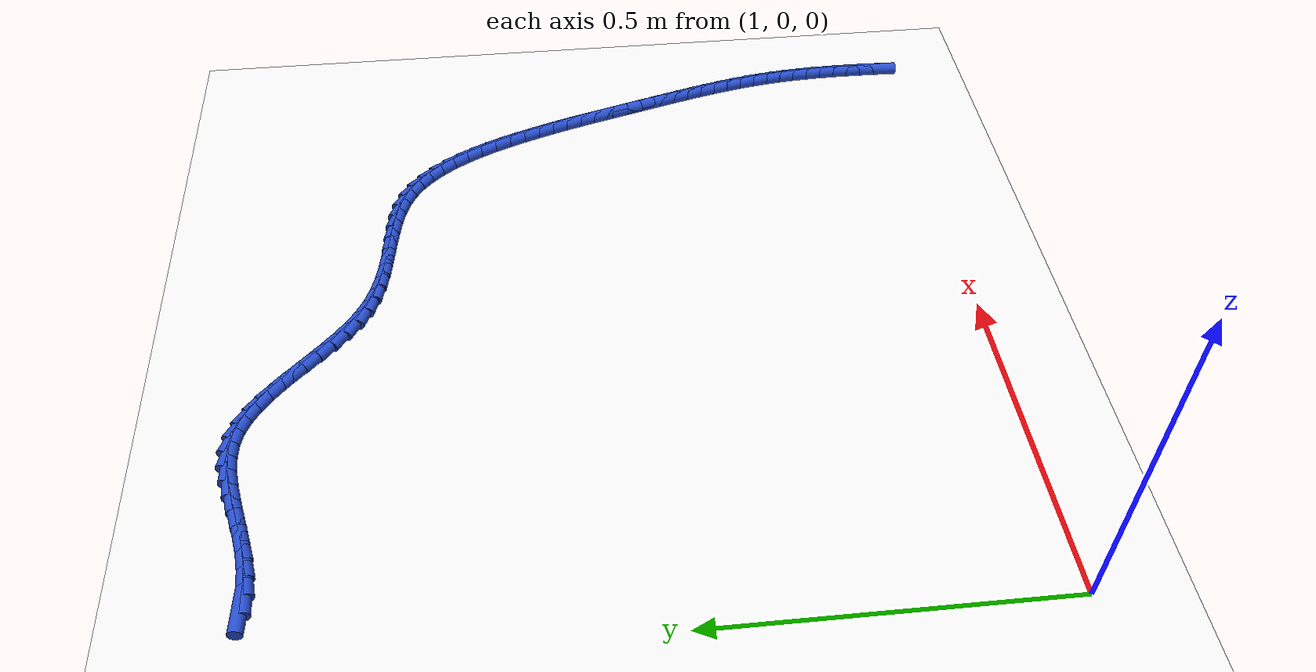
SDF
<sdf version="1.6">
 <world name="default">
  <model name="ground_plane">
   <static>1</static>
   <link name="link">
    <collision name="collision">
     <geometry><plane><normal>0 0 1</normal><size>100 100</size></plane></geometry>
     <surface><friction><ode><mu>100</mu><mu2>50</mu2></ode></friction></surface>
    </collision>
    <visual name="visual">
     <cast_shadows>0</cast_shadows>
     <geometry><plane><normal>0 0 1</normal><size>100 100</size></plane></geometry>
     <material>
      <script><uri>file://media/materials/scripts/gazebo.material</uri><name>Gazebo/WhiteGlow</name></script>
     </material>
    </visual>
   </link>
  </model>
  <model name="line">
   <link name="link_69">
    <pose>1.0824556290506837 1.0446108615287684 0.01 0 1.57 -0.06217525175705942</pose>
    <collision name="collision">
     <geometry><cylinder><radius>0.01</radius><length>0.08</length></cylinder></geometry>
    </collision>
    <visual name="visual">
     <material>
      <script><name>Gazebo/Blue</name><uri>file://media/materials/scripts/gazebo.material</uri></script>
     </material>
     <geometry><cylinder><radius>0.01</radius><length>0.08</length></cylinder></geometry>
    </visual>
   </link>
   <link name="link_70">
    <pose>1.1070647133720144 1.0430788108255156 0.01 0 1.57 0.07206247755293042</pose>
    <collision name="collision">
     <geometry><cylinder><radius>0.01</radius><length>0.08</length></cylinder></geometry>
    </collision>
    <visual name="visual">
     <material>
      <script><name>Gazebo/Blue</name><uri>file://media/materials/scripts/gazebo.material</uri></script>
     </material>
     <geometry><cylinder><radius>0.01</radius><length>0.08</length></cylinder></geometry>
    </visual>
   </link>
   <link name="link_71">
    <pose>1.132243780965003 1.0448964241976773 0.01 0 1.57 0.16911539855303695</pose>
    <collision name="collision">
     <geometry><cylinder><radius>0.01</radius><length>0.08</length></cylinder></geometry>
    </collision>
    <visual name="visual">
     <material>
      <script><name>Gazebo/Blue</name><uri>file://media/materials/scripts/gazebo.material</uri></script>
     </material>
     <geometry><cylinder><radius>0.01</radius><length>0.08</length></cylinder></geometry>
    </visual>
   </link>
   <link name="link_72">
    <pose>1.1578145862930438 1.049262544417084 0.01 0 1.57 0.23211513267761835</pose>
    <collision name="collision">
     <geometry><cylinder><radius>0.01</radius><length>0.08</length></cylinder></geometry>
    </collision>
    <visual name="visual">
     <material>
      <script><name>Gazebo/Blue</name><uri>file://media/materials/scripts/gazebo.material</uri></script>
     </material>
     <geometry><cylinder><radius>0.01</radius><length>0.08</length></cylinder></geometry>
    </visual>
   </link>
   <link name="link_73">
    <pose>1.1835944153786335 1.0553562660055102 0.01 0 1.57 0.26489466493017977</pose>
    <collision name="collision">
     <geometry><cylinder><radius>0.01</radius><length>0.08</length></cylinder></geometry>
    </collision>
    <visual name="visual">
     <material>
      <script><name>Gazebo/Blue</name><uri>file://media/materials/scripts/gazebo.material</uri></script>
     </material>
     <geometry><cylinder><radius>0.01</radius><length>0.08</length></cylinder></geometry>
    </visual>
   </link>
   <link name="link_74">
    <pose>1.2094005542442687 1.0623566834847316 0.01 0 1.57 0.26954493118171796</pose>
    <collision name="collision">
     <geometry><cylinder><radius>0.01</radius><length>0.08</length></cylinder></geometry>
    </collision>
    <visual name="visual">
     <material>
      <script><name>Gazebo/Blue</name><uri>file://media/materials/scripts/gazebo.material</uri></script>
     </material>
     <geometry><cylinder><radius>0.01</radius><length>0.08</length></cylinder></geometry>
    </visual>
   </link>
   <link name="link_75">
    <pose>1.235050288912445 1.0694428913765217 0.01 0 1.57 0.24585004231201069</pose>
    <collision name="collision">
     <geometry><cylinder><radius>0.01</radius><length>0.08</length></cylinder></geometry>
    </collision>
    <visual name="visual">
     <material>
      <script><name>Gazebo/Blue</name><uri>file://media/materials/scripts/gazebo.material</uri></script>
     </material>
     <geometry><cylinder><radius>0.01</radius><length>0.08</length></cylinder></geometry>
    </visual>
   </link>
   <link name="link_76">
    <pose>1.2603609054056597 1.075793984202656 0.01 0 1.57 0.19107725581424376</pose>
    <collision name="collision">
     <geometry><cylinder><radius>0.01</radius><length>0.08</length></cylinder></geometry>
    </collision>
    <visual name="visual">
     <material>
      <script><name>Gazebo/Blue</name><uri>file://media/materials/scripts/gazebo.material</uri></script>
     </material>
     <geometry><cylinder><radius>0.01</radius><length>0.08</length></cylinder></geometry>
    </visual>
   </link>
   <link name="link_77">
    <pose>1.2851496897464085 1.080589056484909 0.01 0 1.57 0.10006832434159599</pose>
    <collision name="collision">
     <geometry><cylinder><radius>0.01</radius><length>0.08</length></cylinder></geometry>
    </collision>
    <visual name="visual">
     <material>
      <script><name>Gazebo/Blue</name><uri>file://media/materials/scripts/gazebo.material</uri></script>
     </material>
     <geometry><cylinder><radius>0.01</radius><length>0.08</length></cylinder></geometry>
    </visual>
   </link>
   <link name="link_78">
    <pose>1.3092339279571883 1.0830072027450557 0.01 0 1.57 -0.03359885169254067</pose>
    <collision name="collision">
     <geometry><cylinder><radius>0.01</radius><length>0.08</length></cylinder></geometry>
    </collision>
    <visual name="visual">
     <material>
      <script><name>Gazebo/Blue</name><uri>file://media/materials/scripts/gazebo.material</uri></script>
     </material>
     <geometry><cylinder><radius>0.01</radius><length>0.08</length></cylinder></geometry>
    </visual>
   </link>
   <link name="link_79">
    <pose>1.332430906060495 1.0822275175048701 0.01 0 1.57 -0.21089504664935457</pose>
    <collision name="collision">
     <geometry><cylinder><radius>0.01</radius><length>0.08</length></cylinder></geometry>
    </collision>
    <visual name="visual">
     <material>
      <script><name>Gazebo/Blue</name><uri>file://media/materials/scripts/gazebo.material</uri></script>
     </material>
     <geometry><cylinder><radius>0.01</radius><length>0.08</length></cylinder></geometry>
    </visual>
   </link>
   <link name="link_80">
    <pose>1.3545734763592754 1.0774872729996194 0.01 0 1.57 -0.3887146374989438</pose>
    <collision name="collision">
     <geometry><cylinder><radius>0.01</radius><length>0.08</length></cylinder></geometry>
    </collision>
    <visual name="visual">
     <material>
      <script><name>Gazebo/Blue</name><uri>file://media/materials/scripts/gazebo.material</uri></script>
     </material>
     <geometry><cylinder><radius>0.01</radius><length>0.08</length></cylinder></geometry>
    </visual>
   </link>
   <link name="link_81">
    <pose>1.3757103748687252 1.0688305893688408 0.01 0 1.57 -0.5308279019924482</pose>
    <collision name="collision">
     <geometry><cylinder><radius>0.01</radius><length>0.08</length></cylinder></geometry>
    </collision>
    <visual name="visual">
     <material>
      <script><name>Gazebo/Blue</name><uri>file://media/materials/scripts/gazebo.material</uri></script>
     </material>
     <geometry><cylinder><radius>0.01</radius><length>0.08</length></cylinder></geometry>
    </visual>
   </link>
   <link name="link_82">
    <pose>1.3960482226305932 1.056891669262073 0.01 0 1.57 -0.6357335535560384</pose>
    <collision name="collision">
     <geometry><cylinder><radius>0.01</radius><length>0.08</length></cylinder></geometry>
    </collision>
    <visual name="visual">
     <material>
      <script><name>Gazebo/Blue</name><uri>file://media/materials/scripts/gazebo.material</uri></script>
     </material>
     <geometry><cylinder><radius>0.01</radius><length>0.08</length></cylinder></geometry>
    </visual>
   </link>
   <link name="link_83">
    <pose>1.4157972501078864 1.0423182052487114 0.01 0 1.57 -0.7073476512284459</pose>
    <collision name="collision">
     <geometry><cylinder><radius>0.01</radius><length>0.08</length></cylinder></geometry>
    </collision>
    <visual name="visual">
     <material>
      <script><name>Gazebo/Blue</name><uri>file://media/materials/scripts/gazebo.material</uri></script>
     </material>
     <geometry><cylinder><radius>0.01</radius><length>0.08</length></cylinder></geometry>
    </visual>
   </link>
   <link name="link_84">
    <pose>1.4351676877636117 1.0257578898981528 0.01 0 1.57 -0.7503034228822908</pose>
    <collision name="collision">
     <geometry><cylinder><radius>0.01</radius><length>0.08</length></cylinder></geometry>
    </collision>
    <visual name="visual">
     <material>
      <script><name>Gazebo/Blue</name><uri>file://media/materials/scripts/gazebo.material</uri></script>
     </material>
     <geometry><cylinder><radius>0.01</radius><length>0.08</length></cylinder></geometry>
    </visual>
   </link>
   <link name="link_85">
    <pose>1.4543697660607753 1.0078584157797932 0.01 0 1.57 -0.7681404348821284</pose>
    <collision name="collision">
     <geometry><cylinder><radius>0.01</radius><length>0.08</length></cylinder></geometry>
    </collision>
    <visual name="visual">
     <material>
      <script><name>Gazebo/Blue</name><uri>file://media/materials/scripts/gazebo.material</uri></script>
     </material>
     <geometry><cylinder><radius>0.01</radius><length>0.08</length></cylinder></geometry>
    </visual>
   </link>
   <link name="link_86">
    <pose>1.4736137154623836 0.9892674754630285 0.01 0 1.57 -0.7628129735417939</pose>
    <collision name="collision">
     <geometry><cylinder><radius>0.01</radius><length>0.08</length></cylinder></geometry>
    </collision>
    <visual name="visual">
     <material>
      <script><name>Gazebo/Blue</name><uri>file://media/materials/scripts/gazebo.material</uri></script>
     </material>
     <geometry><cylinder><radius>0.01</radius><length>0.08</length></cylinder></geometry>
    </visual>
   </link>
   <link name="link_87">
    <pose>1.4931097664314443 0.9706327615172552 0.01 0 1.57 -0.7347011914095828</pose>
    <collision name="collision">
     <geometry><cylinder><radius>0.01</radius><length>0.08</length></cylinder></geometry>
    </collision>
    <visual name="visual">
     <material>
      <script><name>Gazebo/Blue</name><uri>file://media/materials/scripts/gazebo.material</uri></script>
     </material>
     <geometry><cylinder><radius>0.01</radius><length>0.08</length></cylinder></geometry>
    </visual>
   </link>
   <link name="link_88">
    <pose>1.5130681494309637 0.9526019665118693 0.01 0 1.57 -0.682799285022446</pose>
    <collision name="collision">
     <geometry><cylinder><radius>0.01</radius><length>0.08</length></cylinder></geometry>
    </collision>
    <visual name="visual">
     <material>
      <script><name>Gazebo/Blue</name><uri>file://media/materials/scripts/gazebo.material</uri></script>
     </material>
     <geometry><cylinder><radius>0.01</radius><length>0.08</length></cylinder></geometry>
    </visual>
   </link>
   <link name="link_89">
    <pose>1.5336990949239482 0.9358227830162664 0.01 0 1.57 -0.6050968523568712</pose>
    <collision name="collision">
     <geometry><cylinder><radius>0.01</radius><length>0.08</length></cylinder></geometry>
    </collision>
    <visual name="visual">
     <material>
      <script><name>Gazebo/Blue</name><uri>file://media/materials/scripts/gazebo.material</uri></script>
     </material>
     <geometry><cylinder><radius>0.01</radius><length>0.08</length></cylinder></geometry>
    </visual>
   </link>
   <link name="link_90">
    <pose>1.555212833373404 0.9209429035998431 0.01 0 1.57 -0.49941392535456425</pose>
    <collision name="collision">
     <geometry><cylinder><radius>0.01</radius><length>0.08</length></cylinder></geometry>
    </collision>
    <visual name="visual">
     <material>
      <script><name>Gazebo/Blue</name><uri>file://media/materials/scripts/gazebo.material</uri></script>
     </material>
     <geometry><cylinder><radius>0.01</radius><length>0.08</length></cylinder></geometry>
    </visual>
   </link>
   <link name="link_91">
    <pose>1.577819578913936 0.9086099801480341 0.01 0 1.57 -0.37572291962517274</pose>
    <collision name="collision">
     <geometry><cylinder><radius>0.01</radius><length>0.08</length></cylinder></geometry>
    </collision>
    <visual name="visual">
     <material>
      <script><name>Gazebo/Blue</name><uri>file://media/materials/scripts/gazebo.material</uri></script>
     </material>
     <geometry><cylinder><radius>0.01</radius><length>0.08</length></cylinder></geometry>
    </visual>
   </link>
   <link name="link_92">
    <pose>1.6016279363233794 0.8992184939654168 0.01 0 1.57 -0.2719225271617567</pose>
    <collision name="collision">
     <geometry><cylinder><radius>0.01</radius><length>0.08</length></cylinder></geometry>
    </collision>
    <visual name="visual">
     <material>
      <script><name>Gazebo/Blue</name><uri>file://media/materials/scripts/gazebo.material</uri></script>
     </material>
     <geometry><cylinder><radius>0.01</radius><length>0.08</length></cylinder></geometry>
    </visual>
   </link>
   <link name="link_93">
    <pose>1.6264042466085498 0.8923101395614251 0.01 0 1.57 -0.19645701519809297</pose>
    <collision name="collision">
     <geometry><cylinder><radius>0.01</radius><length>0.08</length></cylinder></geometry>
    </collision>
    <visual name="visual">
     <material>
      <script><name>Gazebo/Blue</name><uri>file://media/materials/scripts/gazebo.material</uri></script>
     </material>
     <geometry><cylinder><radius>0.01</radius><length>0.08</length></cylinder></geometry>
    </visual>
   </link>
   <link name="link_94">
    <pose>1.6518428614085514 0.8872472422356251 0.01 0 1.57 -0.14835245076023845</pose>
    <collision name="collision">
     <geometry><cylinder><radius>0.01</radius><length>0.08</length></cylinder></geometry>
    </collision>
    <visual name="visual">
     <material>
      <script><name>Gazebo/Blue</name><uri>file://media/materials/scripts/gazebo.material</uri></script>
     </material>
     <geometry><cylinder><radius>0.01</radius><length>0.08</length></cylinder></geometry>
    </visual>
   </link>
   <link name="link_95">
    <pose>1.6776381323624896 0.8833921272875838 0.01 0 1.57 -0.12642006470550726</pose>
    <collision name="collision">
     <geometry><cylinder><radius>0.01</radius><length>0.08</length></cylinder></geometry>
    </collision>
    <visual name="visual">
     <material>
      <script><name>Gazebo/Blue</name><uri>file://media/materials/scripts/gazebo.material</uri></script>
     </material>
     <geometry><cylinder><radius>0.01</radius><length>0.08</length></cylinder></geometry>
    </visual>
   </link>
   <link name="link_96">
    <pose>1.70348441110947 0.880107120016868 0.01 0 1.57 -0.13026093619695495</pose>
    <collision name="collision">
     <geometry><cylinder><radius>0.01</radius><length>0.08</length></cylinder></geometry>
    </collision>
    <visual name="visual">
     <material>
      <script><name>Gazebo/Blue</name><uri>file://media/materials/scripts/gazebo.material</uri></script>
     </material>
     <geometry><cylinder><radius>0.01</radius><length>0.08</length></cylinder></geometry>
    </visual>
   </link>
   <link name="link_97">
    <pose>1.729076049288597 0.876754545723044 0.01 0 1.57 -0.16071129137922818</pose>
    <collision name="collision">
     <geometry><cylinder><radius>0.01</radius><length>0.08</length></cylinder></geometry>
    </collision>
    <visual name="visual">
     <material>
      <script><name>Gazebo/Blue</name><uri>file://media/materials/scripts/gazebo.material</uri></script>
     </material>
     <geometry><cylinder><radius>0.01</radius><length>0.08</length></cylinder></geometry>
    </visual>
   </link>
   <link name="link_98">
    <pose>1.7541073985389757 0.8726967297056784 0.01 0 1.57 -0.219876916910991</pose>
    <collision name="collision">
     <geometry><cylinder><radius>0.01</radius><length>0.08</length></cylinder></geometry>
    </collision>
    <visual name="visual">
     <material>
      <script><name>Gazebo/Blue</name><uri>file://media/materials/scripts/gazebo.material</uri></script>
     </material>
     <geometry><cylinder><radius>0.01</radius><length>0.08</length></cylinder></geometry>
    </visual>
   </link>
   <link name="link_99">
    <pose>1.7782728104997114 0.867295997264338 0.01 0 1.57 -0.3106218307191822</pose>
    <collision name="collision">
     <geometry><cylinder><radius>0.01</radius><length>0.08</length></cylinder></geometry>
    </collision>
    <visual name="visual">
     <material>
      <script><name>Gazebo/Blue</name><uri>file://media/materials/scripts/gazebo.material</uri></script>
     </material>
     <geometry><cylinder><radius>0.01</radius><length>0.08</length></cylinder></geometry>
    </visual>
   </link>
   <link name="link_100">
    <pose>1.8012666368099095 0.8599146736985896 0.01 0 1.57 -0.43503972890682063</pose>
    <collision name="collision">
     <geometry><cylinder><radius>0.01</radius><length>0.08</length></cylinder></geometry>
    </collision>
    <visual name="visual">
     <material>
      <script><name>Gazebo/Blue</name><uri>file://media/materials/scripts/gazebo.material</uri></script>
     </material>
     <geometry><cylinder><radius>0.01</radius><length>0.08</length></cylinder></geometry>
    </visual>
   </link>
   <link name="link_101">
    <pose>1.8227832556894117 0.8499151487278813 0.01 0 1.57 -0.5821779343871365</pose>
    <collision name="collision">
     <geometry><cylinder><radius>0.01</radius><length>0.08</length></cylinder></geometry>
    </collision>
    <visual name="visual">
     <material>
      <script><name>Gazebo/Blue</name><uri>file://media/materials/scripts/gazebo.material</uri></script>
     </material>
     <geometry><cylinder><radius>0.01</radius><length>0.08</length></cylinder></geometry>
    </visual>
   </link>
   <link name="link_102">
    <pose>1.8426029891252291 0.8368681015282652 0.01 0 1.57 -0.7171227229795174</pose>
    <collision name="collision">
     <geometry><cylinder><radius>0.01</radius><length>0.08</length></cylinder></geometry>
    </collision>
    <visual name="visual">
     <material>
      <script><name>Gazebo/Blue</name><uri>file://media/materials/scripts/gazebo.material</uri></script>
     </material>
     <geometry><cylinder><radius>0.01</radius><length>0.08</length></cylinder></geometry>
    </visual>
   </link>
   <link name="link_103">
    <pose>1.860783049123543 0.8210152694983005 0.01 0 1.57 -0.831986215718584</pose>
    <collision name="collision">
     <geometry><cylinder><radius>0.01</radius><length>0.08</length></cylinder></geometry>
    </collision>
    <visual name="visual">
     <material>
      <script><name>Gazebo/Blue</name><uri>file://media/materials/scripts/gazebo.material</uri></script>
     </material>
     <geometry><cylinder><radius>0.01</radius><length>0.08</length></cylinder></geometry>
    </visual>
   </link>
   <link name="link_104">
    <pose>1.8774363024340797 0.8027332723749919 0.01 0 1.57 -0.9276602059343603</pose>
    <collision name="collision">
     <geometry><cylinder><radius>0.01</radius><length>0.08</length></cylinder></geometry>
    </collision>
    <visual name="visual">
     <material>
      <script><name>Gazebo/Blue</name><uri>file://media/materials/scripts/gazebo.material</uri></script>
     </material>
     <geometry><cylinder><radius>0.01</radius><length>0.08</length></cylinder></geometry>
    </visual>
   </link>
   <link name="link_105">
    <pose>1.892675615806565 0.7823987298953434 0.01 0 1.57 -1.0062828039376301</pose>
    <collision name="collision">
     <geometry><cylinder><radius>0.01</radius><length>0.08</length></cylinder></geometry>
    </collision>
    <visual name="visual">
     <material>
      <script><name>Gazebo/Blue</name><uri>file://media/materials/scripts/gazebo.material</uri></script>
     </material>
     <geometry><cylinder><radius>0.01</radius><length>0.08</length></cylinder></geometry>
    </visual>
   </link>
   <link name="link_106">
    <pose>1.9066138559907257 0.7603882617963594 0.01 0 1.57 -1.0702729212670767</pose>
    <collision name="collision">
     <geometry><cylinder><radius>0.01</radius><length>0.08</length></cylinder></geometry>
    </collision>
    <visual name="visual">
     <material>
      <script><name>Gazebo/Blue</name><uri>file://media/materials/scripts/gazebo.material</uri></script>
     </material>
     <geometry><cylinder><radius>0.01</radius><length>0.08</length></cylinder></geometry>
    </visual>
   </link>
   <link name="link_107">
    <pose>1.9193638897362884 0.7370784878150441 0.01 0 1.57 -1.1218313619200135</pose>
    <collision name="collision">
     <geometry><cylinder><radius>0.01</radius><length>0.08</length></cylinder></geometry>
    </collision>
    <visual name="visual">
     <material>
      <script><name>Gazebo/Blue</name><uri>file://media/materials/scripts/gazebo.material</uri></script>
     </material>
     <geometry><cylinder><radius>0.01</radius><length>0.08</length></cylinder></geometry>
    </visual>
   </link>
   <link name="link_108">
    <pose>1.9310385837929787 0.7128460276884017 0.01 0 1.57 -1.1627430171146815</pose>
    <collision name="collision">
     <geometry><cylinder><radius>0.01</radius><length>0.08</length></cylinder></geometry>
    </collision>
    <visual name="visual">
     <material>
      <script><name>Gazebo/Blue</name><uri>file://media/materials/scripts/gazebo.material</uri></script>
     </material>
     <geometry><cylinder><radius>0.01</radius><length>0.08</length></cylinder></geometry>
    </visual>
   </link>
   <link name="link_109">
    <pose>1.9417508049105237 0.6880675011534366 0.01 0 1.57 -1.1943246170573223</pose>
    <collision name="collision">
     <geometry><cylinder><radius>0.01</radius><length>0.08</length></cylinder></geometry>
    </collision>
    <visual name="visual">
     <material>
      <script><name>Gazebo/Blue</name><uri>file://media/materials/scripts/gazebo.material</uri></script>
     </material>
     <geometry><cylinder><radius>0.01</radius><length>0.08</length></cylinder></geometry>
    </visual>
   </link>
   <link name="link_110">
    <pose>1.9516134198386483 0.6631195279471526 0.01 0 1.57 -1.217622128436554</pose>
    <collision name="collision">
     <geometry><cylinder><radius>0.01</radius><length>0.08</length></cylinder></geometry>
    </collision>
    <visual name="visual">
     <material>
      <script><name>Gazebo/Blue</name><uri>file://media/materials/scripts/gazebo.material</uri></script>
     </material>
     <geometry><cylinder><radius>0.01</radius><length>0.08</length></cylinder></geometry>
    </visual>
   </link>
   <link name="link_111">
    <pose>1.9607389740214167 0.6383641947567661 0.01 0 1.57 -1.2361837849266037</pose>
    <collision name="collision">
     <geometry><cylinder><radius>0.01</radius><length>0.08</length></cylinder></geometry>
    </collision>
    <visual name="visual">
     <material>
      <script><name>Gazebo/Blue</name><uri>file://media/materials/scripts/gazebo.material</uri></script>
     </material>
     <geometry><cylinder><radius>0.01</radius><length>0.08</length></cylinder></geometry>
    </visual>
   </link>
   <link name="link_112">
    <pose>1.969234822966772 0.613928841084136 0.01 0 1.57 -1.2524011329847147</pose>
    <collision name="collision">
     <geometry><cylinder><radius>0.01</radius><length>0.08</length></cylinder></geometry>
    </collision>
    <visual name="visual">
     <material>
      <script><name>Gazebo/Blue</name><uri>file://media/materials/scripts/gazebo.material</uri></script>
     </material>
     <geometry><cylinder><radius>0.01</radius><length>0.08</length></cylinder></geometry>
    </visual>
   </link>
   <link name="link_113">
    <pose>1.977204121962782 0.5897508253272581 0.01 0 1.57 -1.266040569412216</pose>
    <collision name="collision">
     <geometry><cylinder><radius>0.01</radius><length>0.08</length></cylinder></geometry>
    </collision>
    <visual name="visual">
     <material>
      <script><name>Gazebo/Blue</name><uri>file://media/materials/scripts/gazebo.material</uri></script>
     </material>
     <geometry><cylinder><radius>0.01</radius><length>0.08</length></cylinder></geometry>
    </visual>
   </link>
   <link name="link_114">
    <pose>1.9847499057171352 0.565762051885375 0.01 0 1.57 -1.2768423353390834</pose>
    <collision name="collision">
     <geometry><cylinder><radius>0.01</radius><length>0.08</length></cylinder></geometry>
    </collision>
    <visual name="visual">
     <material>
      <script><name>Gazebo/Blue</name><uri>file://media/materials/scripts/gazebo.material</uri></script>
     </material>
     <geometry><cylinder><radius>0.01</radius><length>0.08</length></cylinder></geometry>
    </visual>
   </link>
   <link name="link_115">
    <pose>1.9919752089375184 0.5418944251577302 0.01 0 1.57 -1.2846069005075933</pose>
    <collision name="collision">
     <geometry><cylinder><radius>0.01</radius><length>0.08</length></cylinder></geometry>
    </collision>
    <visual name="visual">
     <material>
      <script><name>Gazebo/Blue</name><uri>file://media/materials/scripts/gazebo.material</uri></script>
     </material>
     <geometry><cylinder><radius>0.01</radius><length>0.08</length></cylinder></geometry>
    </visual>
   </link>
   <link name="link_116">
    <pose>1.9989830663316202 0.5180798495435672 0.01 0 1.57 -1.2892026447010052</pose>
    <collision name="collision">
     <geometry><cylinder><radius>0.01</radius><length>0.08</length></cylinder></geometry>
    </collision>
    <visual name="visual">
     <material>
      <script><name>Gazebo/Blue</name><uri>file://media/materials/scripts/gazebo.material</uri></script>
     </material>
     <geometry><cylinder><radius>0.01</radius><length>0.08</length></cylinder></geometry>
    </visual>
   </link>
   <link name="link_117">
    <pose>2.0058765126071276 0.4942502294421295 0.01 0 1.57 -1.2905702997282829</pose>
    <collision name="collision">
     <geometry><cylinder><radius>0.01</radius><length>0.08</length></cylinder></geometry>
    </collision>
    <visual name="visual">
     <material>
      <script><name>Gazebo/Blue</name><uri>file://media/materials/scripts/gazebo.material</uri></script>
     </material>
     <geometry><cylinder><radius>0.01</radius><length>0.08</length></cylinder></geometry>
    </visual>
   </link>
   <link name="link_118">
    <pose>2.012758582471729 0.47033746925266 0.01 0 1.57 -1.2892661621687804</pose>
    <collision name="collision">
     <geometry><cylinder><radius>0.01</radius><length>0.08</length></cylinder></geometry>
    </collision>
    <visual name="visual">
     <material>
      <script><name>Gazebo/Blue</name><uri>file://media/materials/scripts/gazebo.material</uri></script>
     </material>
     <geometry><cylinder><radius>0.01</radius><length>0.08</length></cylinder></geometry>
    </visual>
   </link>
   <link name="link_119">
    <pose>2.0197160433969925 0.44628083596696067 0.01 0 1.57 -1.2894606096528438</pose>
    <collision name="collision">
     <geometry><cylinder><radius>0.01</radius><length>0.08</length></cylinder></geometry>
    </collision>
    <visual name="visual">
     <material>
      <script><name>Gazebo/Blue</name><uri>file://media/materials/scripts/gazebo.material</uri></script>
     </material>
     <geometry><cylinder><radius>0.01</radius><length>0.08</length></cylinder></geometry>
    </visual>
   </link>
   <link name="link_120">
    <pose>2.026711299982109 0.4220758835300675 0.01 0 1.57 -1.2930237391426986</pose>
    <collision name="collision">
     <geometry><cylinder><radius>0.01</radius><length>0.08</length></cylinder></geometry>
    </collision>
    <visual name="visual">
     <material>
      <script><name>Gazebo/Blue</name><uri>file://media/materials/scripts/gazebo.material</uri></script>
     </material>
     <geometry><cylinder><radius>0.01</radius><length>0.08</length></cylinder></geometry>
    </visual>
   </link>
   <link name="link_121">
    <pose>2.033649355671333 0.39774414579614886 0.01 0 1.57 -1.2999430827250757</pose>
    <collision name="collision">
     <geometry><cylinder><radius>0.01</radius><length>0.08</length></cylinder></geometry>
    </collision>
    <visual name="visual">
     <material>
      <script><name>Gazebo/Blue</name><uri>file://media/materials/scripts/gazebo.material</uri></script>
     </material>
     <geometry><cylinder><radius>0.01</radius><length>0.08</length></cylinder></geometry>
    </visual>
   </link>
   <link name="link_122">
    <pose>2.0404349055777042 0.3733072961708638 0.01 0 1.57 -1.3102321726250505</pose>
    <collision name="collision">
     <geometry><cylinder><radius>0.01</radius><length>0.08</length></cylinder></geometry>
    </collision>
    <visual name="visual">
     <material>
      <script><name>Gazebo/Blue</name><uri>file://media/materials/scripts/gazebo.material</uri></script>
     </material>
     <geometry><cylinder><radius>0.01</radius><length>0.08</length></cylinder></geometry>
    </visual>
   </link>
   <link name="link_123">
    <pose>2.0469726448142684 0.34878700805987234 0.01 0 1.57 -1.3239382533539135</pose>
    <collision name="collision">
     <geometry><cylinder><radius>0.01</radius><length>0.08</length></cylinder></geometry>
    </collision>
    <visual name="visual">
     <material>
      <script><name>Gazebo/Blue</name><uri>file://media/materials/scripts/gazebo.material</uri></script>
     </material>
     <geometry><cylinder><radius>0.01</radius><length>0.08</length></cylinder></geometry>
    </visual>
   </link>
   <link name="link_124">
    <pose>2.053167268494069 0.3242049548688333 0.01 0 1.57 -1.3411393602005544</pose>
    <collision name="collision">
     <geometry><cylinder><radius>0.01</radius><length>0.08</length></cylinder></geometry>
    </collision>
    <visual name="visual">
     <material>
      <script><name>Gazebo/Blue</name><uri>file://media/materials/scripts/gazebo.material</uri></script>
     </material>
     <geometry><cylinder><radius>0.01</radius><length>0.08</length></cylinder></geometry>
    </visual>
   </link>
   <link name="link_125">
    <pose>2.058923471730149 0.2995828100034061 0.01 0 1.57 -1.3619407039140703</pose>
    <collision name="collision">
     <geometry><cylinder><radius>0.01</radius><length>0.08</length></cylinder></geometry>
    </collision>
    <visual name="visual">
     <material>
      <script><name>Gazebo/Blue</name><uri>file://media/materials/scripts/gazebo.material</uri></script>
     </material>
     <geometry><cylinder><radius>0.01</radius><length>0.08</length></cylinder></geometry>
    </visual>
   </link>
   <link name="link_126">
    <pose>2.0641459496355523 0.27494224686925045 0.01 0 1.57 -1.3864699063598183</pose>
    <collision name="collision">
     <geometry><cylinder><radius>0.01</radius><length>0.08</length></cylinder></geometry>
    </collision>
    <visual name="visual">
     <material>
      <script><name>Gazebo/Blue</name><uri>file://media/materials/scripts/gazebo.material</uri></script>
     </material>
     <geometry><cylinder><radius>0.01</radius><length>0.08</length></cylinder></geometry>
    </visual>
   </link>
   <link name="link_127">
    <pose>2.0687393973233212 0.25030493887202554 0.01 0 1.57 -1.414833616569691</pose>
    <collision name="collision">
     <geometry><cylinder><radius>0.01</radius><length>0.08</length></cylinder></geometry>
    </collision>
    <visual name="visual">
     <material>
      <script><name>Gazebo/Blue</name><uri>file://media/materials/scripts/gazebo.material</uri></script>
     </material>
     <geometry><cylinder><radius>0.01</radius><length>0.08</length></cylinder></geometry>
    </visual>
   </link>
   <link name="link_128">
    <pose>2.072609484931001 0.22569227694121965 0.01 0 1.57 -1.4448703685947724</pose>
    <collision name="collision">
     <geometry><cylinder><radius>0.01</radius><length>0.08</length></cylinder></geometry>
    </collision>
    <visual name="visual">
     <material>
      <script><name>Gazebo/Blue</name><uri>file://media/materials/scripts/gazebo.material</uri></script>
     </material>
     <geometry><cylinder><radius>0.01</radius><length>0.08</length></cylinder></geometry>
    </visual>
   </link>
   <link name="link_129">
    <pose>2.0757217113723336 0.20110831889968103 0.01 0 1.57 -1.4729189348222285</pose>
    <collision name="collision">
     <geometry><cylinder><radius>0.01</radius><length>0.08</length></cylinder></geometry>
    </collision>
    <visual name="visual">
     <material>
      <script><name>Gazebo/Blue</name><uri>file://media/materials/scripts/gazebo.material</uri></script>
     </material>
     <geometry><cylinder><radius>0.01</radius><length>0.08</length></cylinder></geometry>
    </visual>
   </link>
   <link name="link_130">
    <pose>2.0781350815255073 0.17653003278243148 0.01 0 1.57 -1.498491788910795</pose>
    <collision name="collision">
     <geometry><cylinder><radius>0.01</radius><length>0.08</length></cylinder></geometry>
    </collision>
    <visual name="visual">
     <material>
      <script><name>Gazebo/Blue</name><uri>file://media/materials/scripts/gazebo.material</uri></script>
     </material>
     <geometry><cylinder><radius>0.01</radius><length>0.08</length></cylinder></geometry>
    </visual>
   </link>
   <link name="link_131">
    <pose>2.079916734627431 0.15193203000421554 0.01 0 1.57 -1.5214483640024914</pose>
    <collision name="collision">
     <geometry><cylinder><radius>0.01</radius><length>0.08</length></cylinder></geometry>
    </collision>
    <visual name="visual">
     <material>
      <script><name>Gazebo/Blue</name><uri>file://media/materials/scripts/gazebo.material</uri></script>
     </material>
     <geometry><cylinder><radius>0.01</radius><length>0.08</length></cylinder></geometry>
    </visual>
   </link>
   <link name="link_132">
    <pose>2.081133809915014 0.1272889219797779 0.01 0 1.57 -1.5416854986846795</pose>
    <collision name="collision">
     <geometry><cylinder><radius>0.01</radius><length>0.08</length></cylinder></geometry>
    </collision>
    <visual name="visual">
     <material>
      <script><name>Gazebo/Blue</name><uri>file://media/materials/scripts/gazebo.material</uri></script>
     </material>
     <geometry><cylinder><radius>0.01</radius><length>0.08</length></cylinder></geometry>
    </visual>
   </link>
   <link name="link_133">
    <pose>2.0818534466251646 0.10257532012386308 0.01 0 1.57 -1.5591344861115768</pose>
    <collision name="collision">
     <geometry><cylinder><radius>0.01</radius><length>0.08</length></cylinder></geometry>
    </collision>
    <visual name="visual">
     <material>
      <script><name>Gazebo/Blue</name><uri>file://media/materials/scripts/gazebo.material</uri></script>
     </material>
     <geometry><cylinder><radius>0.01</radius><length>0.08</length></cylinder></geometry>
    </visual>
   </link>
   <link name="link_134">
    <pose>2.082142783994792 0.07776583585121602 0.01 0 1.57 1.567835224437129</pose>
    <collision name="collision">
     <geometry><cylinder><radius>0.01</radius><length>0.08</length></cylinder></geometry>
    </collision>
    <visual name="visual">
     <material>
      <script><name>Gazebo/Blue</name><uri>file://media/materials/scripts/gazebo.material</uri></script>
     </material>
     <geometry><cylinder><radius>0.01</radius><length>0.08</length></cylinder></geometry>
    </visual>
   </link>
   <link name="link_135">
    <pose>2.0820689612608048 0.05283508057658057 0.01 0 1.57 1.556049320699507</pose>
    <collision name="collision">
     <geometry><cylinder><radius>0.01</radius><length>0.08</length></cylinder></geometry>
    </collision>
    <visual name="visual">
     <material>
      <script><name>Gazebo/Blue</name><uri>file://media/materials/scripts/gazebo.material</uri></script>
     </material>
     <geometry><cylinder><radius>0.01</radius><length>0.08</length></cylinder></geometry>
    </visual>
   </link>
   <link name="link_136">
    <pose>2.0816991176601123 0.027757665714701278 0.01 0 1.57 1.5470883750293307</pose>
    <collision name="collision">
     <geometry><cylinder><radius>0.01</radius><length>0.08</length></cylinder></geometry>
    </collision>
    <visual name="visual">
     <material>
      <script><name>Gazebo/Blue</name><uri>file://media/materials/scripts/gazebo.material</uri></script>
     </material>
     <geometry><cylinder><radius>0.01</radius><length>0.08</length></cylinder></geometry>
    </visual>
   </link>
  </model>
 </world>
</sdf>
